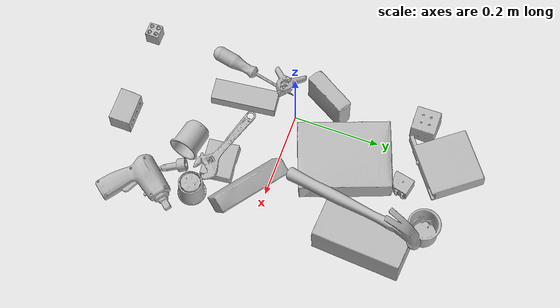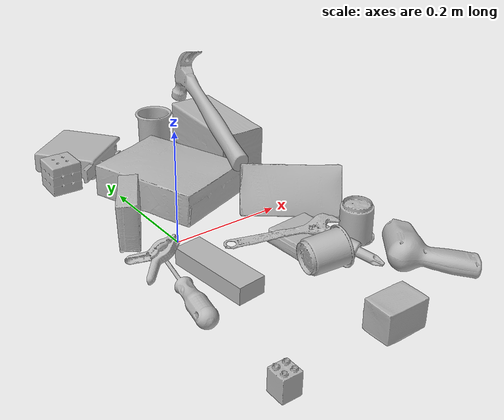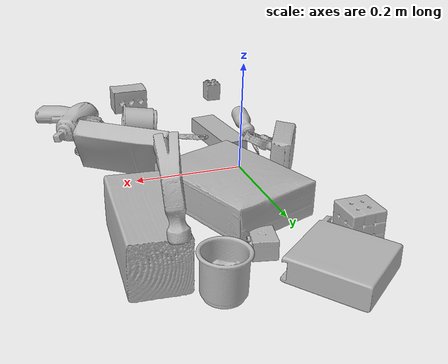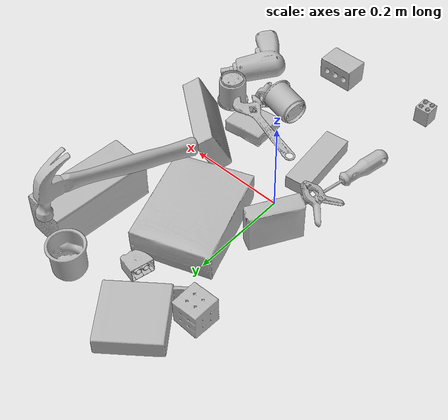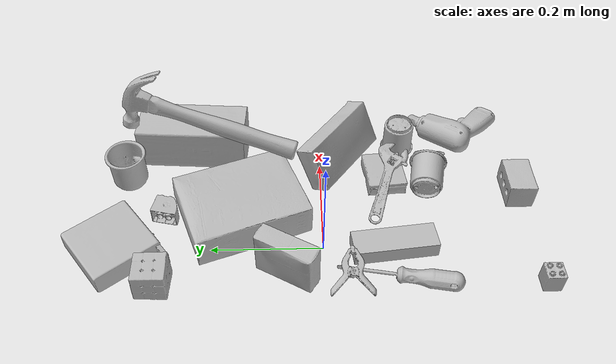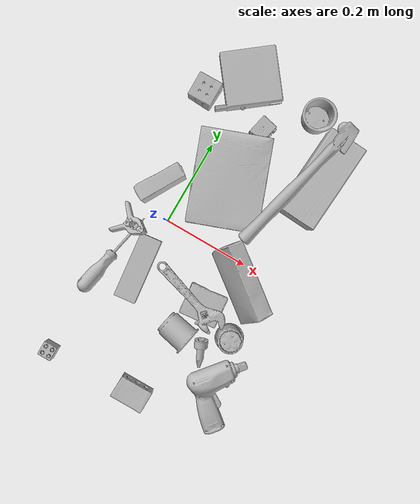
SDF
<sdf version="1.4">
  <world name="default">
    <light name="light1" type="point">
      <pose>0 0 1 0 0 0</pose>
      <diffuse>3 3 3 1</diffuse>
      <specular>3 3 3 1</specular>
    </light>
    <light name="light2" type="point">
      <pose>0 0.5 2 0 0 0</pose>
      <diffuse>1 1 1 1</diffuse>
      <specular>1 1 1 1</specular>
    </light>
    <light name="light3" type="point">
      <pose>0 0.5 2 0 0 0</pose>
      <diffuse>3 3 3 1</diffuse>
      <specular>3 3 3 1</specular>
    </light>
    <scene>
      <ambient>0.7 0.7 0.7</ambient>
    </scene>
    <model name="box21">
      <link name="link_box21">
        <collision name="default">
          <geometry>
            <mesh>
              <uri>model://cracker_box/collision_meshes/collision.obj</uri>
              <scale>1.0 1.0 1.0</scale>
            </mesh>
          </geometry>
          <surface>
            <friction>
              <ode>
                <mu>0.5</mu>
                <mu2>0.5</mu2>
              </ode>
            </friction>
          <contact>
        <ode>
            <max_vel>0</max_vel>
            <min_depth>0.0001</min_depth>
            <kp>1e8</kp>
        </ode>
    </contact></surface>
        </collision>
        <visual name="default">
          <geometry>
            <mesh>
              <uri>model://cracker_box/visual_meshes/visual.dae</uri>
              <scale>1.0 1.0 1.0</scale>
            </mesh>
          </geometry>
        </visual>
        <inertial>
          <mass>2.732837677001953</mass>
          <pose>0.000946416228543967 0.0002543424488976598 -0.0017029533628374338 -0.00031620734042352985 -0.011106490532052917 0.002546795466230165</pose>
          <inertia>
            <ixx>0.0069511193</ixx>
            <iyy>0.011477663</iyy>
            <izz>0.01637968</izz>
            <ixy>0</ixy>
            <ixz>0</ixz>
            <iyz>0</iyz>
          </inertia>
        </inertial>
      </link>
      <pose>0.0736185759305954 0.14527082443237305 0.03553119674324989 3.137211720348779 -0.01654119255921136 1.9287962915053152</pose>
    </model>
    <model name="box22">
      <link name="link_box22">
        <collision name="default">
          <geometry>
            <mesh>
              <uri>model://jenga/collision_meshes/collision.obj</uri>
              <scale>1.0 1.0 1.0</scale>
            </mesh>
          </geometry>
          <surface>
            <friction>
              <ode>
                <mu>0.5</mu>
                <mu2>0.5</mu2>
              </ode>
            </friction>
          <contact>
        <ode>
            <max_vel>0</max_vel>
            <min_depth>0.0001</min_depth>
            <kp>1e8</kp>
        </ode>
    </contact></surface>
        </collision>
        <visual name="default">
          <geometry>
            <mesh>
              <uri>model://jenga/visual_meshes/visual.dae</uri>
              <scale>1.0 1.0 1.0</scale>
            </mesh>
          </geometry>
        </visual>
        <inertial>
          <mass>0.1563216596841812</mass>
          <pose>-2.502855807051674e-07 -0.00010250010382151231 -4.0923401684267446e-05 0.0 -7.34215461761844e-07 0.0</pose>
          <inertia>
            <ixx>4.3258e-05</ixx>
            <iyy>0.000293115</iyy>
            <izz>0.0003129252</izz>
            <ixy>0</ixy>
            <ixz>0</ixz>
            <iyz>0</iyz>
          </inertia>
        </inertial>
      </link>
      <pose>-0.0037064102943986654 -0.12406419217586517 0.014999998733401299 -1.1011676806989447e-08 4.7343948984951175e-09 1.68379652145426</pose>
    </model>
    <model name="box23">
      <link name="link_box23">
        <collision name="default">
          <geometry>
            <mesh>
              <uri>model://pudding_box/collision_meshes/collision.obj</uri>
              <scale>1.0 1.0 1.0</scale>
            </mesh>
          </geometry>
          <surface>
            <friction>
              <ode>
                <mu>0.5</mu>
                <mu2>0.5</mu2>
              </ode>
            </friction>
          <contact>
        <ode>
            <max_vel>0</max_vel>
            <min_depth>0.0001</min_depth>
            <kp>1e8</kp>
        </ode>
    </contact></surface>
        </collision>
        <visual name="default">
          <geometry>
            <mesh>
              <uri>model://pudding_box/visual_meshes/visual.dae</uri>
              <scale>1.0 1.0 1.0</scale>
            </mesh>
          </geometry>
        </visual>
        <inertial>
          <mass>0.32993465662002563</mass>
          <pose>0.0004894821904599667 0.0008067885064519942 -0.0005188827635720372 0.005213102236317791 -0.0066038015122011 0.020079823288174207</pose>
          <inertia>
            <ixx>0.00037297411</ixx>
            <iyy>0.00025093966</iyy>
            <izz>0.0005507938</izz>
            <ixy>0</ixy>
            <ixz>0</ixz>
            <iyz>0</iyz>
          </inertia>
        </inertial>
      </link>
      <pose>-0.05262273550033569 0.06427469104528427 0.04459657892584801 0.00667469948403374 -1.547314199001475 2.601742638549687</pose>
    </model>
    <model name="cup1">
      <link name="link_cup1">
        <collision name="default">
          <geometry>
            <mesh>
              <uri>model://c_cups/collision_meshes/collision.obj</uri>
              <scale>1.0 1.0 1.0</scale>
            </mesh>
          </geometry>
          <surface>
            <friction>
              <ode>
                <mu>0.5</mu>
                <mu2>0.5</mu2>
              </ode>
            </friction>
          <contact>
        <ode>
            <max_vel>0</max_vel>
            <min_depth>0.0001</min_depth>
            <kp>1e8</kp>
        </ode>
    </contact></surface>
        </collision>
        <visual name="default">
          <geometry>
            <mesh>
              <uri>model://c_cups/visual_meshes/visual.dae</uri>
              <scale>1.0 1.0 1.0</scale>
            </mesh>
          </geometry>
        </visual>
        <inertial>
          <mass>0.05159630998969078</mass>
          <pose>0.0007237254758365452 0.0020153908990323544 -0.001275097718462348 0.3021575981944983 0.01346171900925468 -0.08771841488334552</pose>
          <inertia>
            <ixx>3.8371487e-05</ixx>
            <iyy>3.7693397e-05</iyy>
            <izz>3.3934528e-05</izz>
            <ixy>0</ixy>
            <ixz>0</ixz>
            <iyz>0</iyz>
          </inertia>
        </inertial>
      </link>
      <pose>0.2520890533924103 -0.15766698122024536 0.033458031713962555 -3.141592430121943 -6.730887727714701e-07 -1.304540447404066</pose>
    </model>
    <model name="cup2">
      <link name="link_cup2">
        <collision name="default">
          <geometry>
            <mesh>
              <uri>model://d_cups/collision_meshes/collision.obj</uri>
              <scale>1.0 1.0 1.0</scale>
            </mesh>
          </geometry>
          <surface>
            <friction>
              <ode>
                <mu>0.5</mu>
                <mu2>0.5</mu2>
              </ode>
            </friction>
          <contact>
        <ode>
            <max_vel>0</max_vel>
            <min_depth>0.0001</min_depth>
            <kp>1e8</kp>
        </ode>
    </contact></surface>
        </collision>
        <visual name="default">
          <geometry>
            <mesh>
              <uri>model://d_cups/visual_meshes/visual.dae</uri>
              <scale>1.0 1.0 1.0</scale>
            </mesh>
          </geometry>
        </visual>
        <inertial>
          <mass>0.029099034145474434</mass>
          <pose>0.0008068051538430154 0.0019117402844130993 -0.0022666510194540024 0.24013101341738077 -0.2470893725106806 0.5942204262094062</pose>
          <inertia>
            <ixx>2.436274e-05</ixx>
            <iyy>2.429223e-05</iyy>
            <izz>2.2052422e-05</izz>
            <ixy>0</ixy>
            <ixz>0</ixz>
            <iyz>0</iyz>
          </inertia>
        </inertial>
      </link>
      <pose>0.14205190539360046 -0.20051296055316925 0.032273340970277786 1.4300859937482295 0.7956938273590991 1.272979881303704</pose>
    </model>
    <model name="box11">
      <link name="link_box11">
        <collision name="default">
          <geometry>
            <mesh>
              <uri>model://sugar_box/collision_meshes/collision.obj</uri>
              <scale>1.0 1.0 1.0</scale>
            </mesh>
          </geometry>
          <surface>
            <friction>
              <ode>
                <mu>0.5</mu>
                <mu2>0.5</mu2>
              </ode>
            </friction>
          <contact>
        <ode>
            <max_vel>0</max_vel>
            <min_depth>0.0001</min_depth>
            <kp>1e8</kp>
        </ode>
    </contact></surface>
        </collision>
        <visual name="default">
          <geometry>
            <mesh>
              <uri>model://sugar_box/visual_meshes/visual.dae</uri>
              <scale>1.0 1.0 1.0</scale>
            </mesh>
          </geometry>
        </visual>
        <inertial>
          <mass>0.6083751916885376</mass>
          <pose>0.0010343727190047503 3.849109634757042e-05 -0.00036364805418998003 -0.00040462662026216373 0.00105066363904409 0.002615379021562279</pose>
          <inertia>
            <ixx>0.0005068966</ixx>
            <iyy>0.0016383935</iyy>
            <izz>0.0019613528</izz>
            <ixy>0</ixy>
            <ixz>0</ixz>
            <iyz>0</iyz>
          </inertia>
        </inertial>
      </link>
      <pose>0.2103172391653061 -0.03601663187146187 0.049446385353803635 1.1265930750629571 0.005620468548155397 -0.6509760928639104</pose>
    </model>
    <model name="box12">
      <link name="link_box12">
        <collision name="default">
          <geometry>
            <mesh>
              <uri>model://wood_block/collision_meshes/collision.obj</uri>
              <scale>1.0 1.0 1.0</scale>
            </mesh>
          </geometry>
          <surface>
            <friction>
              <ode>
                <mu>0.5</mu>
                <mu2>0.5</mu2>
              </ode>
            </friction>
          <contact>
        <ode>
            <max_vel>0</max_vel>
            <min_depth>0.0001</min_depth>
            <kp>1e8</kp>
        </ode>
    </contact></surface>
        </collision>
        <visual name="default">
          <geometry>
            <mesh>
              <uri>model://wood_block/visual_meshes/visual.dae</uri>
              <scale>1.0 1.0 1.0</scale>
            </mesh>
          </geometry>
        </visual>
        <inertial>
          <mass>1.904224157333374</mass>
          <pose>-5.813315510749817e-06 -0.000570809468626976 0.0002640858292579651 -0.05220878944738684 -0.005192694452018099 -0.006861378422653873</pose>
          <inertia>
            <ixx>0.00254814</ixx>
            <iyy>0.008049577</iyy>
            <izz>0.008019466</izz>
            <ixy>0</ixy>
            <ixz>0</ixz>
            <iyz>0</iyz>
          </inertia>
        </inertial>
      </link>
      <pose>0.24662740528583527 0.24499480426311493 0.045700617134571075 1.5681339590353027 -0.006938478476380403 1.5082314492275195</pose>
    </model>
    <model name="box13">
      <link name="link_box13">
        <collision name="default">
          <geometry>
            <mesh>
              <uri>model://gelatin_box/collision_meshes/collision.obj</uri>
              <scale>1.0 1.0 1.0</scale>
            </mesh>
          </geometry>
          <surface>
            <friction>
              <ode>
                <mu>0.5</mu>
                <mu2>0.5</mu2>
              </ode>
            </friction>
          <contact>
        <ode>
            <max_vel>0</max_vel>
            <min_depth>0.0001</min_depth>
            <kp>1e8</kp>
        </ode>
    </contact></surface>
        </collision>
        <visual name="default">
          <geometry>
            <mesh>
              <uri>model://gelatin_box/visual_meshes/visual.dae</uri>
              <scale>1.0 1.0 1.0</scale>
            </mesh>
          </geometry>
        </visual>
        <inertial>
          <mass>0.15982484817504883</mass>
          <pose>0.0004319618456065655 0.00011156871187267825 -0.0003640321083366871 -0.001050372093012012 -0.00475581868936722 0.016440559471878533</pose>
          <inertia>
            <ixx>0.000112823305</ixx>
            <iyy>8.0589096e-05</iyy>
            <izz>0.0001717422</izz>
            <ixy>0</ixy>
            <ixz>0</ixz>
            <iyz>0</iyz>
          </inertia>
        </inertial>
      </link>
      <pose>0.16437070071697235 -0.12219909578561783 0.014580647461116314 -3.125865070819627 -0.025718564225159217 1.6726494353286137</pose>
    </model>
    <model name="box14">
      <link name="link_box14">
        <collision name="default">
          <geometry>
            <mesh>
              <uri>model://rubiks_cube/collision_meshes/collision.obj</uri>
              <scale>1.0 1.0 1.0</scale>
            </mesh>
          </geometry>
          <surface>
            <friction>
              <ode>
                <mu>0.5</mu>
                <mu2>0.5</mu2>
              </ode>
            </friction>
          <contact>
        <ode>
            <max_vel>0</max_vel>
            <min_depth>0.0001</min_depth>
            <kp>1e8</kp>
        </ode>
    </contact></surface>
        </collision>
        <visual name="default">
          <geometry>
            <mesh>
              <uri>model://rubiks_cube/visual_meshes/visual.dae</uri>
              <scale>1.0 1.0 1.0</scale>
            </mesh>
          </geometry>
        </visual>
        <inertial>
          <mass>0.19606205821037292</mass>
          <pose>2.6721043468569405e-05 5.256967051536776e-05 -7.264316536748083e-06 -0.05467227514375443 -0.09814085307594407 -0.03445353526761094</pose>
          <inertia>
            <ixx>0.00010833746</ixx>
            <iyy>0.000107832224</iyy>
            <izz>0.00010923522</izz>
            <ixy>0</ixy>
            <ixz>0</ixz>
            <iyz>0</iyz>
          </inertia>
        </inertial>
      </link>
      <pose>-0.07170696556568146 0.29150447249412537 0.02905970625579357 -3.134139527285258 0.01089212369282986 -0.02738200725334955</pose>
    </model>
    <model name="cup15">
      <link name="link_cup15">
        <collision name="default">
          <geometry>
            <mesh>
              <uri>model://e_cups/collision_meshes/collision.obj</uri>
              <scale>1.0 1.0 1.0</scale>
            </mesh>
          </geometry>
          <surface>
            <friction>
              <ode>
                <mu>0.5</mu>
                <mu2>0.5</mu2>
              </ode>
            </friction>
          <contact>
        <ode>
            <max_vel>0</max_vel>
            <min_depth>0.0001</min_depth>
            <kp>1e8</kp>
        </ode>
    </contact></surface>
        </collision>
        <visual name="default">
          <geometry>
            <mesh>
              <uri>model://e_cups/visual_meshes/visual.dae</uri>
              <scale>1.0 1.0 1.0</scale>
            </mesh>
          </geometry>
        </visual>
        <inertial>
          <mass>0.09305236488580704</mass>
          <pose>0.0011355740716680884 0.0028797851409763098 -0.003882972989231348 0.6952374393777071 0.08767548394821409 -0.5235242886817723</pose>
          <inertia>
            <ixx>8.204892e-05</ixx>
            <iyy>8.5752865e-05</iyy>
            <izz>7.844823e-05</izz>
            <ixy>0</ixy>
            <ixz>0</ixz>
            <iyz>0</iyz>
          </inertia>
        </inertial>
      </link>
      <pose>0.17323069274425507 0.3644533157348633 0.035600174218416214 -1.1427927782135951e-05 6.609488076475669e-06 -2.7538682730678556</pose>
    </model>
    <model name="toy1">
      <link name="link_toy1">
        <collision name="default">
          <geometry>
            <mesh>
              <uri>model://foam_brick/collision_meshes/collision.obj</uri>
              <scale>1.0 1.0 1.0</scale>
            </mesh>
          </geometry>
          <surface>
            <friction>
              <ode>
                <mu>0.5</mu>
                <mu2>0.5</mu2>
              </ode>
            </friction>
          <contact>
        <ode>
            <max_vel>0</max_vel>
            <min_depth>0.0001</min_depth>
            <kp>1e8</kp>
        </ode>
    </contact></surface>
        </collision>
        <visual name="default">
          <geometry>
            <mesh>
              <uri>model://foam_brick/visual_meshes/visual.dae</uri>
              <scale>1.0 1.0 1.0</scale>
            </mesh>
          </geometry>
        </visual>
        <inertial>
          <mass>0.27397871017456055</mass>
          <pose>-0.0002522472059354186 0.0003458441060502082 -0.00025321010616607964 -0.2940210021807357 0.01727444677850634 -0.0007449878009638903</pose>
          <inertia>
            <ixx>0.00011967903</ixx>
            <iyy>0.00019107372</iyy>
            <izz>0.00019350204</izz>
            <ixy>0</ixy>
            <ixz>0</ixz>
            <iyz>0</iyz>
          </inertia>
        </inertial>
      </link>
      <pose>0.124160997569561 -0.3680592179298401 0.02591068297624588 1.5828212679206497 -0.00037581329945223836 -3.1368901101084203</pose>
    </model>
    <model name="toy2">
      <link name="link_toy2">
        <collision name="default">
          <geometry>
            <mesh>
              <uri>model://b_toy_airplane/collision_meshes/collision.obj</uri>
              <scale>1.0 1.0 1.0</scale>
            </mesh>
          </geometry>
          <surface>
            <friction>
              <ode>
                <mu>0.5</mu>
                <mu2>0.5</mu2>
              </ode>
            </friction>
          <contact>
        <ode>
            <max_vel>0</max_vel>
            <min_depth>0.0001</min_depth>
            <kp>1e8</kp>
        </ode>
    </contact></surface>
        </collision>
        <visual name="default">
          <geometry>
            <mesh>
              <uri>model://b_toy_airplane/visual_meshes/visual.dae</uri>
              <scale>1.0 1.0 1.0</scale>
            </mesh>
          </geometry>
        </visual>
        <inertial>
          <mass>0.24932990968227386</mass>
          <pose>0.005081362556666136 0.004015582613646984 0.00954306498169899 -0.04001809188182278 -0.04022184417958596 -0.5601502893643007</pose>
          <inertia>
            <ixx>0.0004628856</ixx>
            <iyy>0.00018501986</iyy>
            <izz>0.00057587575</izz>
            <ixy>0</ixy>
            <ixz>0</ixz>
            <iyz>0</iyz>
          </inertia>
        </inertial>
      </link>
      <pose>0.271307110786438 -0.2798514664173126 0.01697787642478943 0.18487638607348353 0.11349920414692553 0.8692219994565629</pose>
    </model>
    <model name="toy3">
      <link name="link_toy3">
        <collision name="default">
          <geometry>
            <mesh>
              <uri>model://f_lego_duplo/collision_meshes/collision.obj</uri>
              <scale>1.0 1.0 1.0</scale>
            </mesh>
          </geometry>
          <surface>
            <friction>
              <ode>
                <mu>0.5</mu>
                <mu2>0.5</mu2>
              </ode>
            </friction>
          <contact>
        <ode>
            <max_vel>0</max_vel>
            <min_depth>0.0001</min_depth>
            <kp>1e8</kp>
        </ode>
    </contact></surface>
        </collision>
        <visual name="default">
          <geometry>
            <mesh>
              <uri>model://f_lego_duplo/visual_meshes/visual.dae</uri>
              <scale>1.0 1.0 1.0</scale>
            </mesh>
          </geometry>
        </visual>
        <inertial>
          <mass>0.027739444747567177</mass>
          <pose>2.369416324654594e-05 0.00013393194240052253 0.0018837876850739121 0.02983859902212722 -0.014425048030447486 -0.6756637170693943</pose>
          <inertia>
            <ixx>5.8614983e-06</ixx>
            <iyy>5.913718e-06</iyy>
            <izz>5.0880294e-06</izz>
            <ixy>0</ixy>
            <ixz>0</ixz>
            <iyz>0</iyz>
          </inertia>
        </inertial>
      </link>
      <pose>-0.08344551175832748 -0.3811454474925995 0.021871013566851616 3.230601435562135e-06 5.0672182652130746e-06 1.5709703810857607</pose>
    </model>
    <model name="toy4">
      <link name="link_toy4">
        <collision name="default">
          <geometry>
            <mesh>
              <uri>model://d_toy_airplane/collision_meshes/collision.obj</uri>
              <scale>1.0 1.0 1.0</scale>
            </mesh>
          </geometry>
          <surface>
            <friction>
              <ode>
                <mu>0.5</mu>
                <mu2>0.5</mu2>
              </ode>
            </friction>
          <contact>
        <ode>
            <max_vel>0</max_vel>
            <min_depth>0.0001</min_depth>
            <kp>1e8</kp>
        </ode>
    </contact></surface>
        </collision>
        <visual name="default">
          <geometry>
            <mesh>
              <uri>model://d_toy_airplane/visual_meshes/visual.dae</uri>
              <scale>1.0 1.0 1.0</scale>
            </mesh>
          </geometry>
        </visual>
        <inertial>
          <mass>0.018694162368774414</mass>
          <pose>9.410315396962687e-05 -5.80932610318996e-05 -0.011728095822036266 0.0002670379770250361 0.004678992469792915 0.5194762078456472</pose>
          <inertia>
            <ixx>5.6041463e-06</ixx>
            <iyy>5.6083722e-06</iyy>
            <izz>1.6919282e-06</izz>
            <ixy>0</ixy>
            <ixz>0</ixz>
            <iyz>0</iyz>
          </inertia>
        </inertial>
      </link>
      <pose>0.2128719687461853 -0.22063560783863068 0.011275216937065125 2.327332252318939 1.2426901495499474 1.1630479735527395</pose>
    </model>
    <model name="toy5">
      <link name="link_toy5">
        <collision name="default">
          <geometry>
            <mesh>
              <uri>model://d_lego_duplo/collision_meshes/collision.obj</uri>
              <scale>1.0 1.0 1.0</scale>
            </mesh>
          </geometry>
          <surface>
            <friction>
              <ode>
                <mu>0.5</mu>
                <mu2>0.5</mu2>
              </ode>
            </friction>
          <contact>
        <ode>
            <max_vel>0</max_vel>
            <min_depth>0.0001</min_depth>
            <kp>1e8</kp>
        </ode>
    </contact></surface>
        </collision>
        <visual name="default">
          <geometry>
            <mesh>
              <uri>model://d_lego_duplo/visual_meshes/visual.dae</uri>
              <scale>1.0 1.0 1.0</scale>
            </mesh>
          </geometry>
        </visual>
        <inertial>
          <mass>0.04560890793800354</mass>
          <pose>0.0028305635787546635 0.00016366137424483895 0.0008589806966483593 0.08010848326521293 -0.38355231288211744 0.0010296590748680565</pose>
          <inertia>
            <ixx>8.829212e-06</ixx>
            <iyy>1.253105e-05</iyy>
            <izz>1.2084434e-05</izz>
            <ixy>0</ixy>
            <ixz>0</ixz>
            <iyz>0</iyz>
          </inertia>
        </inertial>
      </link>
      <pose>0.08355231583118439 0.2831895649433136 0.01623479276895523 1.5922840979016908 -0.015373966088695741 1.3514926659404072</pose>
    </model>
    <model name="toy6">
      <link name="link_toy6">
        <collision name="default">
          <geometry>
            <mesh>
              <uri>model://nine_hole_peg_test/collision_meshes/collision.obj</uri>
              <scale>1.0 1.0 1.0</scale>
            </mesh>
          </geometry>
          <surface>
            <friction>
              <ode>
                <mu>0.5</mu>
                <mu2>0.5</mu2>
              </ode>
            </friction>
          <contact>
        <ode>
            <max_vel>0</max_vel>
            <min_depth>0.0001</min_depth>
            <kp>1e8</kp>
        </ode>
    </contact></surface>
        </collision>
        <visual name="default">
          <geometry>
            <mesh>
              <uri>model://nine_hole_peg_test/visual_meshes/visual.dae</uri>
              <scale>1.0 1.0 1.0</scale>
            </mesh>
          </geometry>
        </visual>
        <inertial>
          <mass>0.9848376512527466</mass>
          <pose>-0.004617386031895876 -0.009647614322602749 2.646068787726108e-05 -0.0014666785927196467 0.0007194180015025765 -0.6342414580933873</pose>
          <inertia>
            <ixx>0.0015399556</ixx>
            <iyy>0.0014378404</iyy>
            <izz>0.0026984566</izz>
            <ixy>0</ixy>
            <ixz>0</ixz>
            <iyz>0</iyz>
          </inertia>
        </inertial>
      </link>
      <pose>-0.004107199143618345 0.35933196544647217 0.020791009068489075 3.141592608222557 -1.6403954290286464e-08 -0.9145581057189562</pose>
    </model>
    <model name="hardware1">
      <link name="link_hardware1">
        <collision name="default">
          <geometry>
            <mesh>
              <uri>model://hammer/collision_meshes/collision.obj</uri>
              <scale>1.0 1.0 1.0</scale>
            </mesh>
          </geometry>
          <surface>
            <friction>
              <ode>
                <mu>0.5</mu>
                <mu2>0.5</mu2>
              </ode>
            </friction>
          <contact>
        <ode>
            <max_vel>0</max_vel>
            <min_depth>0.0001</min_depth>
            <kp>1e8</kp>
        </ode>
    </contact></surface>
        </collision>
        <visual name="default">
          <geometry>
            <mesh>
              <uri>model://hammer/visual_meshes/visual.dae</uri>
              <scale>1.0 1.0 1.0</scale>
            </mesh>
          </geometry>
        </visual>
        <inertial>
          <mass>0.19812075793743134</mass>
          <pose>0.009415780194103718 -0.011892358772456646 -0.00012350631004665047 0.023155553199567438 -0.004792165144826806 -0.012760319769687977</pose>
          <inertia>
            <ixx>8.4865314e-05</ixx>
            <iyy>0.0022996028</iyy>
            <izz>0.0023654876</izz>
            <ixy>0</ixy>
            <ixz>0</ixz>
            <iyz>0</iyz>
          </inertia>
        </inertial>
      </link>
      <pose>0.20494328439235687 0.21134096384048462 0.1320410668849945 1.6548939153858695 -0.22760125922098456 1.3406393076724084</pose>
    </model>
    <model name="hardware2">
      <link name="link_hardware2">
        <collision name="default">
          <geometry>
            <mesh>
              <uri>model://medium_clamp/collision_meshes/collision.obj</uri>
              <scale>1.0 1.0 1.0</scale>
            </mesh>
          </geometry>
          <surface>
            <friction>
              <ode>
                <mu>0.5</mu>
                <mu2>0.5</mu2>
              </ode>
            </friction>
          <contact>
        <ode>
            <max_vel>0</max_vel>
            <min_depth>0.0001</min_depth>
            <kp>1e8</kp>
        </ode>
    </contact></surface>
        </collision>
        <visual name="default">
          <geometry>
            <mesh>
              <uri>model://medium_clamp/visual_meshes/visual.dae</uri>
              <scale>1.0 1.0 1.0</scale>
            </mesh>
          </geometry>
        </visual>
        <inertial>
          <mass>0.022759946063160896</mass>
          <pose>0.005390991922467947 0.00039532387745566666 -0.0001222159044118598 -0.0012269199415174078 0.0025845019151957355 0.03820777718195871</pose>
          <inertia>
            <ixx>6.200628e-06</ixx>
            <iyy>9.023669e-06</iyy>
            <izz>1.3899154e-05</izz>
            <ixy>0</ixy>
            <ixz>0</ixz>
            <iyz>0</iyz>
          </inertia>
        </inertial>
      </link>
      <pose>-0.06981127709150314 -0.04581724479794502 0.02186254970729351 3.1409802463625414 -0.4508667756498619 -0.012696926136466724</pose>
    </model>
    <model name="hardware3">
      <link name="link_hardware3">
        <collision name="default">
          <geometry>
            <mesh>
              <uri>model://flat_screwdriver/collision_meshes/collision.obj</uri>
              <scale>1.0 1.0 1.0</scale>
            </mesh>
          </geometry>
          <surface>
            <friction>
              <ode>
                <mu>0.5</mu>
                <mu2>0.5</mu2>
              </ode>
            </friction>
          <contact>
        <ode>
            <max_vel>0</max_vel>
            <min_depth>0.0001</min_depth>
            <kp>1e8</kp>
        </ode>
    </contact></surface>
        </collision>
        <visual name="default">
          <geometry>
            <mesh>
              <uri>model://flat_screwdriver/visual_meshes/visual.dae</uri>
              <scale>1.0 1.0 1.0</scale>
            </mesh>
          </geometry>
        </visual>
        <inertial>
          <mass>0.09131896495819092</mass>
          <pose>-0.0489187091588974 -0.0006576800951734185 -0.0006140916375443339 -0.5615616021105532 -0.003233725851923771 0.0069822762955213</pose>
          <inertia>
            <ixx>1.0789267e-05</ixx>
            <iyy>0.00013697217</iyy>
            <izz>0.00013690875</izz>
            <ixy>0</ixy>
            <ixz>0</ixz>
            <iyz>0</iyz>
          </inertia>
        </inertial>
      </link>
      <pose>-0.06957221776247025 -0.1287713348865509 0.015210762619972229 1.7961487143331543 0.03882295127081398 1.3740303604567325</pose>
    </model>
    <model name="hardware4">
      <link name="link_hardware4">
        <collision name="default">
          <geometry>
            <mesh>
              <uri>model://adjustable_wrench/collision_meshes/collision.obj</uri>
              <scale>1.0 1.0 1.0</scale>
            </mesh>
          </geometry>
          <surface>
            <friction>
              <ode>
                <mu>0.5</mu>
                <mu2>0.5</mu2>
              </ode>
            </friction>
          <contact>
        <ode>
            <max_vel>0</max_vel>
            <min_depth>0.0001</min_depth>
            <kp>1e8</kp>
        </ode>
    </contact></surface>
        </collision>
        <visual name="default">
          <geometry>
            <mesh>
              <uri>model://adjustable_wrench/visual_meshes/visual.dae</uri>
              <scale>1.0 1.0 1.0</scale>
            </mesh>
          </geometry>
        </visual>
        <inertial>
          <mass>0.023054517805576324</mass>
          <pose>0.03740980476140976 -0.0028968877159059048 -0.0011149226920679212 -0.01447335734168526 0.006656027895675122 -0.010954173130845575</pose>
          <inertia>
            <ixx>4.7184403e-06</ixx>
            <iyy>5.5223813e-05</iyy>
            <izz>5.969163e-05</izz>
            <ixy>0</ixy>
            <ixz>0</ixz>
            <iyz>0</iyz>
          </inertia>
        </inertial>
      </link>
      <pose>0.13034756481647491 -0.12434826791286469 0.03149710223078728 -3.1306632313599096 -0.03283153696888177 -0.29336649664126335</pose>
    </model>
  <physics type="ode">
      <max_contacts>50</max_contacts>
      <ode>
        <solver>
          <type>quick</type>
          <iters>75</iters>
        </solver>
        <constraints>
          <contact_max_correcting_vel>0</contact_max_correcting_vel>
          <contact_surface_layer>0</contact_surface_layer>
        </constraints>
      </ode>
    </physics></world>
</sdf>
